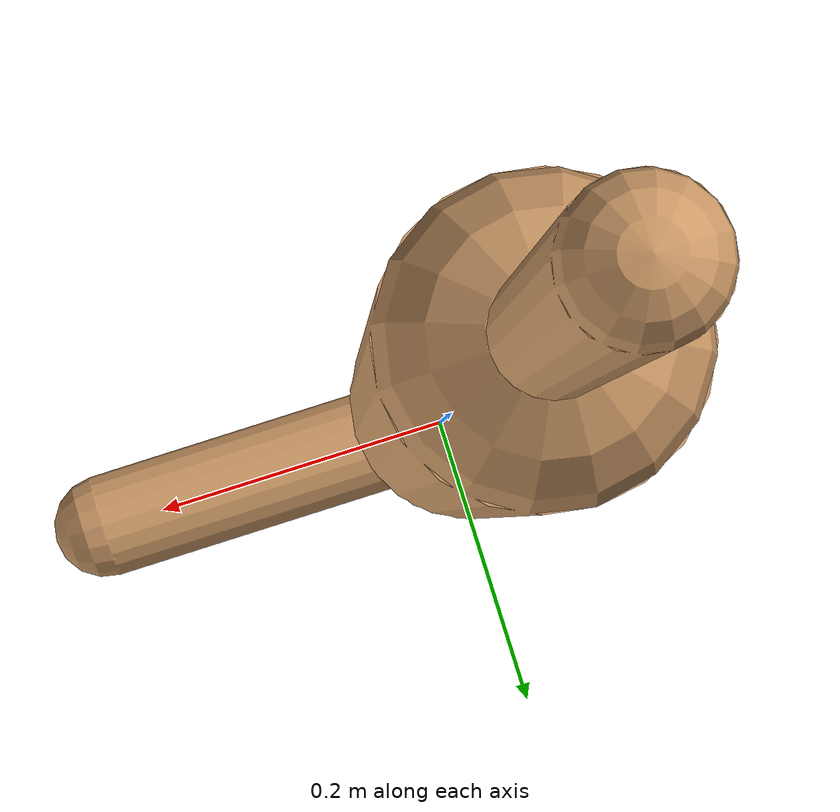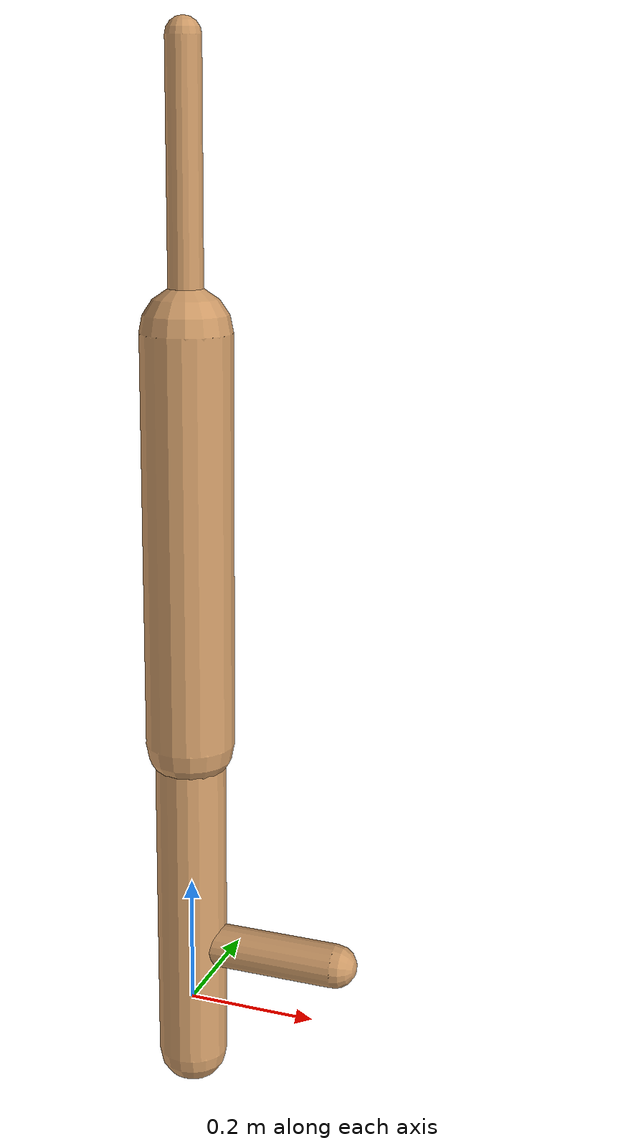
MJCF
<mujoco model="walker2d">
  <compiler angle="degree" coordinate="global" inertiafromgeom="true" />
  <default>
    <joint armature="0.01" damping=".1" limited="true" />
    <geom conaffinity="0" condim="3" contype="1" density="1000" friction="0.8 .1 .1" rgba="0.8 0.6 .4 1" />
  </default>
  <option integrator="RK4" timestep="0.002" />
  <worldbody>

    <body name="torso" pos="0 0 0.3560954012222957">
      <joint armature="0" axis="1 0 0" damping="0" limited="false" name="ignorex" pos="0 0 0" stiffness="0" type="slide" />
      <joint armature="0" axis="0 0 1" damping="0" limited="false" name="ignorez" pos="0 0 0" ref="1.25" stiffness="0" type="slide" />
      <joint armature="0" axis="0 1 0" damping="0" limited="false" name="ignorey" pos="0 0 0" stiffness="0" type="hinge" />
      <geom fromto="0 0 1.45 0 0 1.05" name="torso_geom" size="0.02556426371024817" type="capsule" />
      <body name="thigh">
        <joint axis="0 -1 0" name="thigh_joint" pos="0 0 1.05" range="-150 0" type="hinge" />
        <geom fromto="0.0 0.0 1.05 0.0 0.0 0.43132323099996517" name="thigh_geom" size="0.06740996334684234" type="capsule" />
        <body name="leg" pos="0.0 0.0 -0.1686767690000348">
          <joint axis="0 -1 0" name="leg_joint" pos="0 0 0.6" range="-150 0" type="hinge" />
          <geom fromto="0.0 0.0 0.6 0.0 0.0 -0.08741863222226087" name="leg_geom" size="0.05392797067747386" type="capsule" />
          <body name="foot" pos="0.0 0.0 -0.18741863222226088">
            <joint axis="0 -1 0" name="foot_joint" pos="0 0 0.1" range="-45 45" type="hinge" />
            <geom fromto="-0.0 0.0 0.1 0.23591625058914728 0.0 0.1" name="foot_geom" size="0.03358915966457556" type="capsule" />
          </body>
        </body>
      </body>

      <body name="thigh_left">
        <joint axis="0 -1 0" name="thigh_left_joint" pos="0 0 1.05" range="-150 0" type="hinge" />
        <geom fromto="0.0 0.0 1.05 0.0 0.0 0.43132323099996517" name="thigh_left_geom" rgba=".7 .3 .6 1" size="0.06740996334684234" type="capsule" />
        <body name="leg_left" pos="0.0 0.0 -0.1686767690000348">
          <joint axis="0 -1 0" name="leg_left_joint" pos="0 0 0.6" range="-150 0" type="hinge" />
          <geom fromto="0.0 0.0 0.6 0.0 0.0 -0.08741863222226087" name="leg_left_geom" rgba=".7 .3 .6 1" size="0.05392797067747386" type="capsule" />
          <body name="foot_left" pos="0.0 0.0 -0.18741863222226088">
            <joint axis="0 -1 0" name="foot_left_joint" pos="0 0 0.1" range="-45 45" type="hinge" />
            <geom fromto="-0.0 0.0 0.1 0.23591625058914728 0.0 0.1" name="foot_left_geom" rgba=".7 .3 .6 1" size="0.03358915966457556" type="capsule" />
          </body>
        </body>
      </body>
    </body>
  </worldbody>
  <actuator>

    <motor ctrllimited="true" ctrlrange="-1.0 1.0" gear="100" joint="thigh_joint" />
    <motor ctrllimited="true" ctrlrange="-1.0 1.0" gear="100" joint="leg_joint" />
    <motor ctrllimited="true" ctrlrange="-1.0 1.0" gear="100" joint="foot_joint" />
    <motor ctrllimited="true" ctrlrange="-1.0 1.0" gear="100" joint="thigh_left_joint" />
    <motor ctrllimited="true" ctrlrange="-1.0 1.0" gear="100" joint="leg_left_joint" />
    <motor ctrllimited="true" ctrlrange="-1.0 1.0" gear="100" joint="foot_left_joint" />

  </actuator>
</mujoco>
